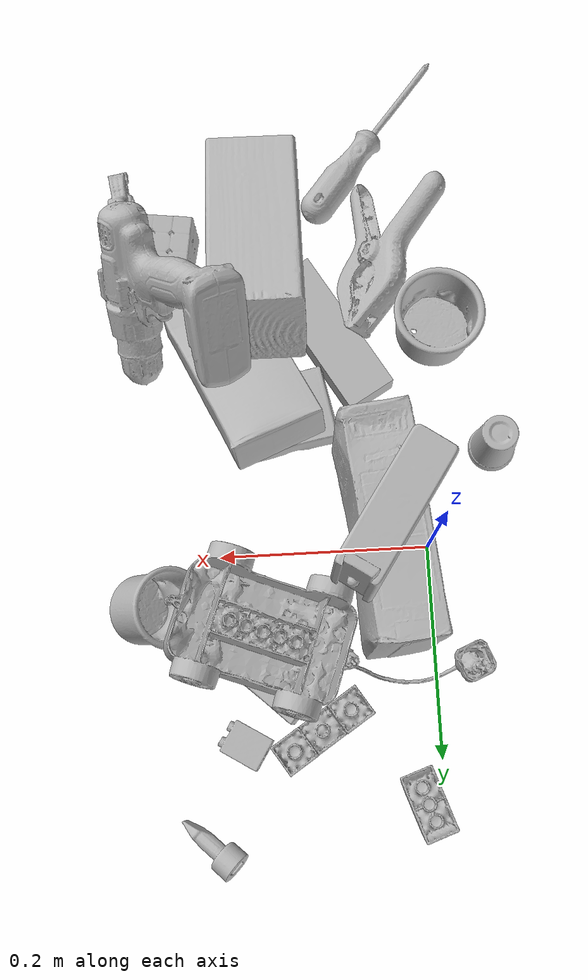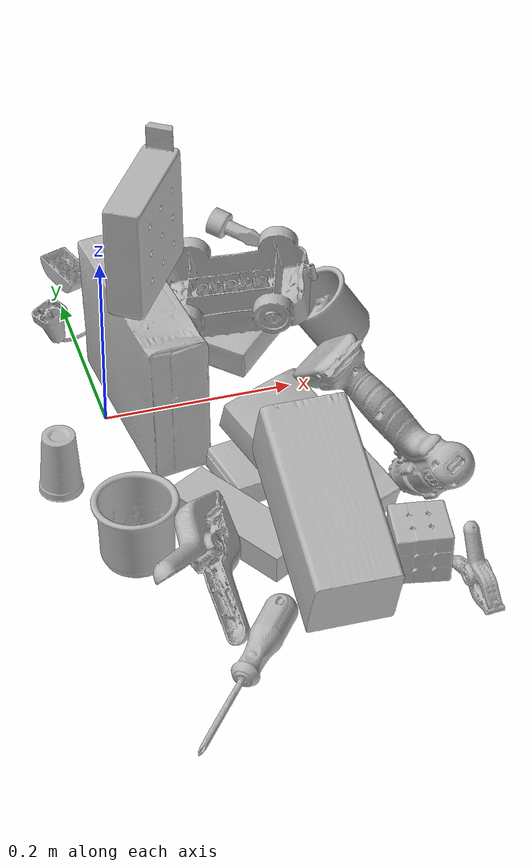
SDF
<sdf version="1.4">
  <world name="default">
    <light name="light1" type="point">
      <pose>0 0 1 0 0 0</pose>
      <diffuse>3 3 3 1</diffuse>
      <specular>3 3 3 1</specular>
    </light>
    <light name="light2" type="point">
      <pose>0 0.5 2 0 0 0</pose>
      <diffuse>1 1 1 1</diffuse>
      <specular>1 1 1 1</specular>
    </light>
    <light name="light3" type="point">
      <pose>0 0.5 2 0 0 0</pose>
      <diffuse>3 3 3 1</diffuse>
      <specular>3 3 3 1</specular>
    </light>
    <scene>
      <ambient>0.7 0.7 0.7</ambient>
    </scene>
    <model name="box21">
      <link name="link_box21">
        <collision name="default">
          <geometry>
            <mesh>
              <uri>model://cracker_box/collision_meshes/collision.obj</uri>
              <scale>1.0 1.0 1.0</scale>
            </mesh>
          </geometry>
          <surface>
            <friction>
              <ode>
                <mu>0.5</mu>
                <mu2>0.5</mu2>
              </ode>
            </friction>
          <contact>
        <ode>
            <max_vel>0</max_vel>
            <min_depth>0.0001</min_depth>
            <kp>1e8</kp>
        </ode>
    </contact></surface>
        </collision>
        <visual name="default">
          <geometry>
            <mesh>
              <uri>model://cracker_box/visual_meshes/visual.dae</uri>
              <scale>1.0 1.0 1.0</scale>
            </mesh>
          </geometry>
        </visual>
        <inertial>
          <mass>2.590176582336426</mass>
          <pose>0.0009464152390137315 0.00025434247800149024 -0.0017029535956680775 -0.0003162072774594163 -0.011106486806667554 0.0025467954652388498</pose>
          <inertia>
            <ixx>0.0065882523</ixx>
            <iyy>0.0108785</iyy>
            <izz>0.015524619</izz>
            <ixy>0</ixy>
            <ixz>0</ixz>
            <iyz>0</iyz>
          </inertia>
        </inertial>
      </link>
      <pose>0.04463457316160202 -0.0026320016477257013 0.08175785839557648 1.5452241930098498 0.009056889319588445 1.6809562795693294</pose>
    </model>
    <model name="box22">
      <link name="link_box22">
        <collision name="default">
          <geometry>
            <mesh>
              <uri>model://gelatin_box/collision_meshes/collision.obj</uri>
              <scale>1.0 1.0 1.0</scale>
            </mesh>
          </geometry>
          <surface>
            <friction>
              <ode>
                <mu>0.5</mu>
                <mu2>0.5</mu2>
              </ode>
            </friction>
          <contact>
        <ode>
            <max_vel>0</max_vel>
            <min_depth>0.0001</min_depth>
            <kp>1e8</kp>
        </ode>
    </contact></surface>
        </collision>
        <visual name="default">
          <geometry>
            <mesh>
              <uri>model://gelatin_box/visual_meshes/visual.dae</uri>
              <scale>1.0 1.0 1.0</scale>
            </mesh>
          </geometry>
        </visual>
        <inertial>
          <mass>0.25047940015792847</mass>
          <pose>0.0004319618456065655 0.00011156871914863586 -0.0003640321083366871 -0.0010503719848663328 -0.004755819155031653 0.016440561334722496</pose>
          <inertia>
            <ixx>0.00017681804</ixx>
            <iyy>0.00012630019</iyy>
            <izz>0.0002691564</izz>
            <ixy>0</ixy>
            <ixz>0</ixz>
            <iyz>0</iyz>
          </inertia>
        </inertial>
      </link>
      <pose>0.1282542645931244 -0.13502763211727142 0.014585589990019798 -3.12529326122993 -0.0253685360296494 1.7731378515108753</pose>
    </model>
    <model name="box23">
      <link name="link_box23">
        <collision name="default">
          <geometry>
            <mesh>
              <uri>model://pudding_box/collision_meshes/collision.obj</uri>
              <scale>1.0 1.0 1.0</scale>
            </mesh>
          </geometry>
          <surface>
            <friction>
              <ode>
                <mu>0.5</mu>
                <mu2>0.5</mu2>
              </ode>
            </friction>
          <contact>
        <ode>
            <max_vel>0</max_vel>
            <min_depth>0.0001</min_depth>
            <kp>1e8</kp>
        </ode>
    </contact></surface>
        </collision>
        <visual name="default">
          <geometry>
            <mesh>
              <uri>model://pudding_box/visual_meshes/visual.dae</uri>
              <scale>1.0 1.0 1.0</scale>
            </mesh>
          </geometry>
        </visual>
        <inertial>
          <mass>0.39469316601753235</mass>
          <pose>0.0004894821904599667 0.000806788622867316 -0.0005188827635720372 0.005213100892100292 -0.006603796836808699 0.020079821441474487</pose>
          <inertia>
            <ixx>0.00044618026</ixx>
            <iyy>0.00030019323</iyy>
            <izz>0.00065890176</izz>
            <ixy>0</ixy>
            <ixz>0</ixz>
            <iyz>0</iyz>
          </inertia>
        </inertial>
      </link>
      <pose>0.14822794497013092 0.09243913739919662 0.019725823774933815 0.02234764092174488 -0.011390950715440464 0.8067914643506715</pose>
    </model>
    <model name="cup1">
      <link name="link_cup1">
        <collision name="default">
          <geometry>
            <mesh>
              <uri>model://cup_small/collision_meshes/collision.obj</uri>
              <scale>1.0 1.0 1.0</scale>
            </mesh>
          </geometry>
          <surface>
            <friction>
              <ode>
                <mu>0.5</mu>
                <mu2>0.5</mu2>
              </ode>
            </friction>
          <contact>
        <ode>
            <max_vel>0</max_vel>
            <min_depth>0.0001</min_depth>
            <kp>1e8</kp>
        </ode>
    </contact></surface>
        </collision>
        <visual name="default">
          <geometry>
            <mesh>
              <uri>model://cup_small/visual_meshes/visual.dae</uri>
              <scale>1.0 1.0 1.0</scale>
            </mesh>
          </geometry>
        </visual>
        <inertial>
          <mass>0.021035347133874893</mass>
          <pose>0.0001048244594130665 -0.0003377834218554199 -0.010742821730673313 -0.011493211249102088 -0.015280240526329824 -0.5058153233609384</pose>
          <inertia>
            <ixx>1.2385285e-05</ixx>
            <iyy>1.2449176e-05</iyy>
            <izz>5.591994e-06</izz>
            <ixy>0</ixy>
            <ixz>0</ixz>
            <iyz>0</iyz>
          </inertia>
        </inertial>
      </link>
      <pose>-0.06973573565483093 -0.09351654350757599 0.03469981253147125 -3.13246621722631 0.0086104281574593 2.551011317385802</pose>
    </model>
    <model name="cup2">
      <link name="link_cup2">
        <collision name="default">
          <geometry>
            <mesh>
              <uri>model://e_cups/collision_meshes/collision.obj</uri>
              <scale>1.0 1.0 1.0</scale>
            </mesh>
          </geometry>
          <surface>
            <friction>
              <ode>
                <mu>0.5</mu>
                <mu2>0.5</mu2>
              </ode>
            </friction>
          <contact>
        <ode>
            <max_vel>0</max_vel>
            <min_depth>0.0001</min_depth>
            <kp>1e8</kp>
        </ode>
    </contact></surface>
        </collision>
        <visual name="default">
          <geometry>
            <mesh>
              <uri>model://e_cups/visual_meshes/visual.dae</uri>
              <scale>1.0 1.0 1.0</scale>
            </mesh>
          </geometry>
        </visual>
        <inertial>
          <mass>0.053841520100831985</mass>
          <pose>0.0011355747701600194 0.0028797851409763098 -0.0038829720579087734 0.69523823542345 0.08767615215021585 -0.5235238319868403</pose>
          <inertia>
            <ixx>4.7474743e-05</ixx>
            <iyy>4.9617902e-05</iyy>
            <izz>4.5391338e-05</izz>
            <ixy>0</ixy>
            <ixz>0</ixz>
            <iyz>0</iyz>
          </inertia>
        </inertial>
      </link>
      <pose>0.25979799032211304 0.050454042851924896 0.04523099213838577 -0.5698390654682226 0.08015803163859045 1.5364765335247341</pose>
    </model>
    <model name="box11">
      <link name="link_box11">
        <collision name="default">
          <geometry>
            <mesh>
              <uri>model://jenga/collision_meshes/collision.obj</uri>
              <scale>1.0 1.0 1.0</scale>
            </mesh>
          </geometry>
          <surface>
            <friction>
              <ode>
                <mu>0.5</mu>
                <mu2>0.5</mu2>
              </ode>
            </friction>
          <contact>
        <ode>
            <max_vel>0</max_vel>
            <min_depth>0.0001</min_depth>
            <kp>1e8</kp>
        </ode>
    </contact></surface>
        </collision>
        <visual name="default">
          <geometry>
            <mesh>
              <uri>model://jenga/visual_meshes/visual.dae</uri>
              <scale>1.0 1.0 1.0</scale>
            </mesh>
          </geometry>
        </visual>
        <inertial>
          <mass>0.26362571120262146</mass>
          <pose>-2.502855807051674e-07 -0.00010250010382151231 -4.0923401684267446e-05 0.0 -7.342155186052628e-07 0.0</pose>
          <inertia>
            <ixx>7.295163e-05</ixx>
            <iyy>0.0004943182</iyy>
            <izz>0.0005277267</izz>
            <ixy>0</ixy>
            <ixz>0</ixz>
            <iyz>0</iyz>
          </inertia>
        </inertial>
      </link>
      <pose>0.08336681127548218 -0.2126028686761856 0.014999997802078724 -3.141592578440112 1.6293507018826226e-08 2.105239945617714</pose>
    </model>
    <model name="box12">
      <link name="link_box12">
        <collision name="default">
          <geometry>
            <mesh>
              <uri>model://rubiks_cube/collision_meshes/collision.obj</uri>
              <scale>1.0 1.0 1.0</scale>
            </mesh>
          </geometry>
          <surface>
            <friction>
              <ode>
                <mu>0.5</mu>
                <mu2>0.5</mu2>
              </ode>
            </friction>
          <contact>
        <ode>
            <max_vel>0</max_vel>
            <min_depth>0.0001</min_depth>
            <kp>1e8</kp>
        </ode>
    </contact></surface>
        </collision>
        <visual name="default">
          <geometry>
            <mesh>
              <uri>model://rubiks_cube/visual_meshes/visual.dae</uri>
              <scale>1.0 1.0 1.0</scale>
            </mesh>
          </geometry>
        </visual>
        <inertial>
          <mass>0.2476155012845993</mass>
          <pose>2.6721041649580002e-05 5.256966323941015e-05 -7.2643156272533815e-06 -0.05467269607811095 -0.09813983501015876 -0.034455733913541106</pose>
          <inertia>
            <ixx>0.00013682418</ixx>
            <iyy>0.0001361861</iyy>
            <izz>0.00013795799</izz>
            <ixy>0</ixy>
            <ixz>0</ixz>
            <iyz>0</iyz>
          </inertia>
        </inertial>
      </link>
      <pose>0.24140211939811707 -0.3036307394504547 0.029262330383062363 3.130227352069914 -0.016538537453904777 2.9704782079390286</pose>
    </model>
    <model name="box13">
      <link name="link_box13">
        <collision name="default">
          <geometry>
            <mesh>
              <uri>model://sugar_box/collision_meshes/collision.obj</uri>
              <scale>1.0 1.0 1.0</scale>
            </mesh>
          </geometry>
          <surface>
            <friction>
              <ode>
                <mu>0.5</mu>
                <mu2>0.5</mu2>
              </ode>
            </friction>
          <contact>
        <ode>
            <max_vel>0</max_vel>
            <min_depth>0.0001</min_depth>
            <kp>1e8</kp>
        </ode>
    </contact></surface>
        </collision>
        <visual name="default">
          <geometry>
            <mesh>
              <uri>model://sugar_box/visual_meshes/visual.dae</uri>
              <scale>1.0 1.0 1.0</scale>
            </mesh>
          </geometry>
        </visual>
        <inertial>
          <mass>0.6861893534660339</mass>
          <pose>0.0010343727190047503 3.849109634757042e-05 -0.0003636480250861496 -0.00040462627129080113 0.001050663522124822 0.0026153787889376494</pose>
          <inertia>
            <ixx>0.0005717311</ixx>
            <iyy>0.0018479523</iyy>
            <izz>0.0022122194</izz>
            <ixy>0</ixy>
            <ixz>0</ixz>
            <iyz>0</iyz>
          </inertia>
        </inertial>
      </link>
      <pose>0.16903860867023468 -0.1714244782924652 0.04786505177617073 3.0796249873199635 -0.3198770141202465 1.9954130516232311</pose>
    </model>
    <model name="box14">
      <link name="link_box14">
        <collision name="default">
          <geometry>
            <mesh>
              <uri>model://wood_block/collision_meshes/collision.obj</uri>
              <scale>1.0 1.0 1.0</scale>
            </mesh>
          </geometry>
          <surface>
            <friction>
              <ode>
                <mu>0.5</mu>
                <mu2>0.5</mu2>
              </ode>
            </friction>
          <contact>
        <ode>
            <max_vel>0</max_vel>
            <min_depth>0.0001</min_depth>
            <kp>1e8</kp>
        </ode>
    </contact></surface>
        </collision>
        <visual name="default">
          <geometry>
            <mesh>
              <uri>model://wood_block/visual_meshes/visual.dae</uri>
              <scale>1.0 1.0 1.0</scale>
            </mesh>
          </geometry>
        </visual>
        <inertial>
          <mass>2.2081377506256104</mass>
          <pose>-5.813315965497168e-06 -0.000570809468626976 0.00026408585836179554 -0.052206634003801496 -0.0051926960857359 -0.00686137798931887</pose>
          <inertia>
            <ixx>0.0029548227</ixx>
            <iyy>0.009334286</iyy>
            <izz>0.0092993695</izz>
            <ixy>0</ixy>
            <ixz>0</ixz>
            <iyz>0</iyz>
          </inertia>
        </inertial>
      </link>
      <pose>0.1505858302116394 -0.28667375445365906 0.0776575356721878 -1.5707952142645185 -0.356382718393362 1.5586527698105468</pose>
    </model>
    <model name="cup15">
      <link name="link_cup15">
        <collision name="default">
          <geometry>
            <mesh>
              <uri>model://g_cups/collision_meshes/collision.obj</uri>
              <scale>1.0 1.0 1.0</scale>
            </mesh>
          </geometry>
          <surface>
            <friction>
              <ode>
                <mu>0.5</mu>
                <mu2>0.5</mu2>
              </ode>
            </friction>
          <contact>
        <ode>
            <max_vel>0</max_vel>
            <min_depth>0.0001</min_depth>
            <kp>1e8</kp>
        </ode>
    </contact></surface>
        </collision>
        <visual name="default">
          <geometry>
            <mesh>
              <uri>model://g_cups/visual_meshes/visual.dae</uri>
              <scale>1.0 1.0 1.0</scale>
            </mesh>
          </geometry>
        </visual>
        <inertial>
          <mass>0.09534990042448044</mass>
          <pose>-0.000794626830611378 -4.206429366604425e-05 -0.002132937079295516 -0.21382187015428292 -0.3141046168173621 0.3112040328096479</pose>
          <inertia>
            <ixx>0.00011129469</ixx>
            <iyy>0.0001109161</iyy>
            <izz>0.00011528214</izz>
            <ixy>0</ixy>
            <ixz>0</ixz>
            <iyz>0</iyz>
          </inertia>
        </inertial>
      </link>
      <pose>-0.02124081738293171 -0.2149420529603958 0.037469469010829926 -0.007679988661418111 0.018161385275144038 2.0843290676425816</pose>
    </model>
    <model name="toy1">
      <link name="link_toy1">
        <collision name="default">
          <geometry>
            <mesh>
              <uri>model://a_lego_duplo/collision_meshes/collision.obj</uri>
              <scale>1.0 1.0 1.0</scale>
            </mesh>
          </geometry>
          <surface>
            <friction>
              <ode>
                <mu>0.5</mu>
                <mu2>0.5</mu2>
              </ode>
            </friction>
          <contact>
        <ode>
            <max_vel>0</max_vel>
            <min_depth>0.0001</min_depth>
            <kp>1e8</kp>
        </ode>
    </contact></surface>
        </collision>
        <visual name="default">
          <geometry>
            <mesh>
              <uri>model://a_lego_duplo/visual_meshes/visual.dae</uri>
              <scale>1.0 1.0 1.0</scale>
            </mesh>
          </geometry>
        </visual>
        <inertial>
          <mass>0.019288161769509315</mass>
          <pose>-0.00011337728938087821 0.00018517542048357427 0.00036926069878973067 -0.014116980162122142 -0.00012566491180396528 6.141847735431564e-05</pose>
          <inertia>
            <ixx>2.4728956e-06</ixx>
            <iyy>5.539828e-06</iyy>
            <izz>6.86231e-06</izz>
            <ixy>0</ixy>
            <ixz>0</ixz>
            <iyz>0</iyz>
          </inertia>
        </inertial>
      </link>
      <pose>0.01702774688601494 0.23933327198028564 0.012124757282435894 -3.1412825776093785 -0.015579259525610255 1.9003509131857494</pose>
    </model>
    <model name="toy2">
      <link name="link_toy2">
        <collision name="default">
          <geometry>
            <mesh>
              <uri>model://nine_hole_peg_test/collision_meshes/collision.obj</uri>
              <scale>1.0 1.0 1.0</scale>
            </mesh>
          </geometry>
          <surface>
            <friction>
              <ode>
                <mu>0.5</mu>
                <mu2>0.5</mu2>
              </ode>
            </friction>
          <contact>
        <ode>
            <max_vel>0</max_vel>
            <min_depth>0.0001</min_depth>
            <kp>1e8</kp>
        </ode>
    </contact></surface>
        </collision>
        <visual name="default">
          <geometry>
            <mesh>
              <uri>model://nine_hole_peg_test/visual_meshes/visual.dae</uri>
              <scale>1.0 1.0 1.0</scale>
            </mesh>
          </geometry>
        </visual>
        <inertial>
          <mass>0.4416040778160095</mass>
          <pose>-0.004617387894541025 -0.009647616185247898 2.646069333422929e-05 -0.001466680632441769 0.0007194151669294288 -0.6342433000636255</pose>
          <inertia>
            <ixx>0.00069052057</ixx>
            <iyy>0.0006447319</iyy>
            <izz>0.0012099957</izz>
            <ixy>0</ixy>
            <ixz>0</ixz>
            <iyz>0</iyz>
          </inertia>
        </inertial>
      </link>
      <pose>0.051020026206970215 0.011136194691061974 0.23720116913318634 1.5571446085040117 0.0005944545864292657 0.9784561813008965</pose>
    </model>
    <model name="toy3">
      <link name="link_toy3">
        <collision name="default">
          <geometry>
            <mesh>
              <uri>model://b_lego_duplo/collision_meshes/collision.obj</uri>
              <scale>1.0 1.0 1.0</scale>
            </mesh>
          </geometry>
          <surface>
            <friction>
              <ode>
                <mu>0.5</mu>
                <mu2>0.5</mu2>
              </ode>
            </friction>
          <contact>
        <ode>
            <max_vel>0</max_vel>
            <min_depth>0.0001</min_depth>
            <kp>1e8</kp>
        </ode>
    </contact></surface>
        </collision>
        <visual name="default">
          <geometry>
            <mesh>
              <uri>model://b_lego_duplo/visual_meshes/visual.dae</uri>
              <scale>1.0 1.0 1.0</scale>
            </mesh>
          </geometry>
        </visual>
        <inertial>
          <mass>0.05141952633857727</mass>
          <pose>-0.00011053046182496473 -9.15286273084348e-06 0.0019294298253953457 -0.03749504579203769 -0.026353926476799443 0.45190277296460496</pose>
          <inertia>
            <ixx>1.0523392e-05</ixx>
            <iyy>1.0594135e-05</iyy>
            <izz>9.376003e-06</izz>
            <ixy>0</ixy>
            <ixz>0</ixz>
            <iyz>0</iyz>
          </inertia>
        </inertial>
      </link>
      <pose>0.18276484310626984 0.176659494638443 0.016152402386069298 -3.1207879757504258 1.5624604757158997 2.6039634373939036</pose>
    </model>
    <model name="toy4">
      <link name="link_toy4">
        <collision name="default">
          <geometry>
            <mesh>
              <uri>model://e_lego_duplo/collision_meshes/collision.obj</uri>
              <scale>1.0 1.0 1.0</scale>
            </mesh>
          </geometry>
          <surface>
            <friction>
              <ode>
                <mu>0.5</mu>
                <mu2>0.5</mu2>
              </ode>
            </friction>
          <contact>
        <ode>
            <max_vel>0</max_vel>
            <min_depth>0.0001</min_depth>
            <kp>1e8</kp>
        </ode>
    </contact></surface>
        </collision>
        <visual name="default">
          <geometry>
            <mesh>
              <uri>model://e_lego_duplo/visual_meshes/visual.dae</uri>
              <scale>1.0 1.0 1.0</scale>
            </mesh>
          </geometry>
        </visual>
        <inertial>
          <mass>0.10851083695888519</mass>
          <pose>0.0003256036143284291 0.00023485413112211972 0.0019521439680829644 -0.022567807713092337 -6.825385155411165e-05 -0.007625153430497312</pose>
          <inertia>
            <ixx>2.2628092e-05</ixx>
            <iyy>9.28715e-05</iyy>
            <izz>9.0438196e-05</izz>
            <ixy>0</ixy>
            <ixz>0</ixz>
            <iyz>0</iyz>
          </inertia>
        </inertial>
      </link>
      <pose>0.1105962023139 0.16796447336673737 0.021755345165729523 -3.1251589768499257 -0.002420669054462363 -2.5663792792126805</pose>
    </model>
    <model name="toy5">
      <link name="link_toy5">
        <collision name="default">
          <geometry>
            <mesh>
              <uri>model://e_toy_airplane/collision_meshes/collision.obj</uri>
              <scale>1.0 1.0 1.0</scale>
            </mesh>
          </geometry>
          <surface>
            <friction>
              <ode>
                <mu>0.5</mu>
                <mu2>0.5</mu2>
              </ode>
            </friction>
          <contact>
        <ode>
            <max_vel>0</max_vel>
            <min_depth>0.0001</min_depth>
            <kp>1e8</kp>
        </ode>
    </contact></surface>
        </collision>
        <visual name="default">
          <geometry>
            <mesh>
              <uri>model://e_toy_airplane/visual_meshes/visual.dae</uri>
              <scale>1.0 1.0 1.0</scale>
            </mesh>
          </geometry>
        </visual>
        <inertial>
          <mass>0.028576364740729332</mass>
          <pose>0.00011740469926735386 -2.248284363304265e-05 -0.011187203228473663 0.005518470588584354 0.009228302056362008 0.15041344019646216</pose>
          <inertia>
            <ixx>8.721834e-06</ixx>
            <iyy>8.6326145e-06</iyy>
            <izz>2.6212538e-06</izz>
            <ixy>0</ixy>
            <ixz>0</ixz>
            <iyz>0</iyz>
          </inertia>
        </inertial>
      </link>
      <pose>0.21812213957309723 0.2638184428215027 0.012364771217107773 1.7532851487639791 0.37558028261884674 0.8875299702435269</pose>
    </model>
    <model name="toy6">
      <link name="link_toy6">
        <collision name="default">
          <geometry>
            <mesh>
              <uri>model://g_lego_duplo/collision_meshes/collision.obj</uri>
              <scale>1.0 1.0 1.0</scale>
            </mesh>
          </geometry>
          <surface>
            <friction>
              <ode>
                <mu>0.5</mu>
                <mu2>0.5</mu2>
              </ode>
            </friction>
          <contact>
        <ode>
            <max_vel>0</max_vel>
            <min_depth>0.0001</min_depth>
            <kp>1e8</kp>
        </ode>
    </contact></surface>
        </collision>
        <visual name="default">
          <geometry>
            <mesh>
              <uri>model://g_lego_duplo/visual_meshes/visual.dae</uri>
              <scale>1.0 1.0 1.0</scale>
            </mesh>
          </geometry>
        </visual>
        <inertial>
          <mass>0.2849176824092865</mass>
          <pose>-0.050047703087329865 0.0017554622609168291 0.0038806754164397717 0.010963023424049216 0.03810828912622395 -0.09653028734865207</pose>
          <inertia>
            <ixx>0.000412849</ixx>
            <iyy>0.0012481753</iyy>
            <izz>0.0015615128</izz>
            <ixy>0</ixy>
            <ixz>0</ixz>
            <iyz>0</iyz>
          </inertia>
        </inertial>
      </link>
      <pose>0.1043725460767746 0.09600234776735306 0.06402341276407242 3.06143430408895 0.20764679194761623 2.7927907513448136</pose>
    </model>
    <model name="hardware1">
      <link name="link_hardware1">
        <collision name="default">
          <geometry>
            <mesh>
              <uri>model://large_clamp/collision_meshes/collision.obj</uri>
              <scale>1.0 1.0 1.0</scale>
            </mesh>
          </geometry>
          <surface>
            <friction>
              <ode>
                <mu>0.5</mu>
                <mu2>0.5</mu2>
              </ode>
            </friction>
          <contact>
        <ode>
            <max_vel>0</max_vel>
            <min_depth>0.0001</min_depth>
            <kp>1e8</kp>
        </ode>
    </contact></surface>
        </collision>
        <visual name="default">
          <geometry>
            <mesh>
              <uri>model://large_clamp/visual_meshes/visual.dae</uri>
              <scale>1.0 1.0 1.0</scale>
            </mesh>
          </geometry>
        </visual>
        <inertial>
          <mass>0.15191641449928284</mass>
          <pose>0.006369356997311115 0.00035856704926118255 -0.00018398075189907104 -0.0021330805905738653 0.00967158570552682 0.02663313568730603</pose>
          <inertia>
            <ixx>0.00013403181</ixx>
            <iyy>0.0002545337</iyy>
            <izz>0.00036821538</izz>
            <ixy>0</ixy>
            <ixz>0</ixz>
            <iyz>0</iyz>
          </inertia>
        </inertial>
      </link>
      <pose>0.03123561479151249 -0.2818552851676941 0.04765309393405914 0.8249423216921058 0.020998704935011332 1.2250013180365715</pose>
    </model>
    <model name="hardware2">
      <link name="link_hardware2">
        <collision name="default">
          <geometry>
            <mesh>
              <uri>model://phillips_screwdriver/collision_meshes/collision.obj</uri>
              <scale>1.0 1.0 1.0</scale>
            </mesh>
          </geometry>
          <surface>
            <friction>
              <ode>
                <mu>0.5</mu>
                <mu2>0.5</mu2>
              </ode>
            </friction>
          <contact>
        <ode>
            <max_vel>0</max_vel>
            <min_depth>0.0001</min_depth>
            <kp>1e8</kp>
        </ode>
    </contact></surface>
        </collision>
        <visual name="default">
          <geometry>
            <mesh>
              <uri>model://phillips_screwdriver/visual_meshes/visual.dae</uri>
              <scale>1.0 1.0 1.0</scale>
            </mesh>
          </geometry>
        </visual>
        <inertial>
          <mass>0.09855502843856812</mass>
          <pose>-0.04777182266116142 0.001036230125464499 -0.00045555492397397757 -0.15717104537538515 0.005850995063257979 -0.0021567379341223374</pose>
          <inertia>
            <ixx>1.15792045e-05</ixx>
            <iyy>0.00014518296</iyy>
            <izz>0.00014530632</izz>
            <ixy>0</ixy>
            <ixz>0</ixz>
            <iyz>0</iyz>
          </inertia>
        </inertial>
      </link>
      <pose>0.031154071912169456 -0.4168645441532135 0.014107843860983849 1.417173207560221 0.032660091659466914 -2.2463775024949166</pose>
    </model>
    <model name="hardware3">
      <link name="link_hardware3">
        <collision name="default">
          <geometry>
            <mesh>
              <uri>model://power_drill/collision_meshes/collision.obj</uri>
              <scale>1.0 1.0 1.0</scale>
            </mesh>
          </geometry>
          <surface>
            <friction>
              <ode>
                <mu>0.5</mu>
                <mu2>0.5</mu2>
              </ode>
            </friction>
          <contact>
        <ode>
            <max_vel>0</max_vel>
            <min_depth>0.0001</min_depth>
            <kp>1e8</kp>
        </ode>
    </contact></surface>
        </collision>
        <visual name="default">
          <geometry>
            <mesh>
              <uri>model://power_drill/visual_meshes/visual.dae</uri>
              <scale>1.0 1.0 1.0</scale>
            </mesh>
          </geometry>
        </visual>
        <inertial>
          <mass>0.8579708337783813</mass>
          <pose>-0.01478054840117693 0.01436943281441927 0.0012414173688739538 0.004609163561922946 0.004073017669368797 -0.18362705043487879</pose>
          <inertia>
            <ixx>0.0034962718</ixx>
            <iyy>0.0013756006</iyy>
            <izz>0.0046174442</izz>
            <ixy>0</ixy>
            <ixz>0</ixz>
            <iyz>0</iyz>
          </inertia>
        </inertial>
      </link>
      <pose>0.23161500692367554 -0.20923630893230438 0.11093853414058685 -2.1555604663923833 0.7340827871093234 1.613406511332631</pose>
    </model>
    <model name="hardware4">
      <link name="link_hardware4">
        <collision name="default">
          <geometry>
            <mesh>
              <uri>model://medium_clamp/collision_meshes/collision.obj</uri>
              <scale>1.0 1.0 1.0</scale>
            </mesh>
          </geometry>
          <surface>
            <friction>
              <ode>
                <mu>0.5</mu>
                <mu2>0.5</mu2>
              </ode>
            </friction>
          <contact>
        <ode>
            <max_vel>0</max_vel>
            <min_depth>0.0001</min_depth>
            <kp>1e8</kp>
        </ode>
    </contact></surface>
        </collision>
        <visual name="default">
          <geometry>
            <mesh>
              <uri>model://medium_clamp/visual_meshes/visual.dae</uri>
              <scale>1.0 1.0 1.0</scale>
            </mesh>
          </geometry>
        </visual>
        <inertial>
          <mass>0.019661318510770798</mass>
          <pose>0.005390993319451809 0.0003953249251935631 -0.00012221586075611413 -0.0012269159857183107 0.002584502991641296 0.038207758549707246</pose>
          <inertia>
            <ixx>5.356451e-06</ixx>
            <iyy>7.795151e-06</iyy>
            <izz>1.2006867e-05</izz>
            <ixy>0</ixy>
            <ixz>0</ixz>
            <iyz>0</iyz>
          </inertia>
        </inertial>
      </link>
      <pose>0.2827135920524597 -0.35612791776657104 0.025561127811670303 -1.593578406747796 0.37739353169413004 -1.4327701775607256</pose>
    </model>
  <physics type="ode">
      <max_contacts>50</max_contacts>
      <ode>
        <solver>
          <type>quick</type>
          <iters>75</iters>
        </solver>
        <constraints>
          <contact_max_correcting_vel>0</contact_max_correcting_vel>
          <contact_surface_layer>0</contact_surface_layer>
        </constraints>
      </ode>
    </physics></world>
</sdf>
